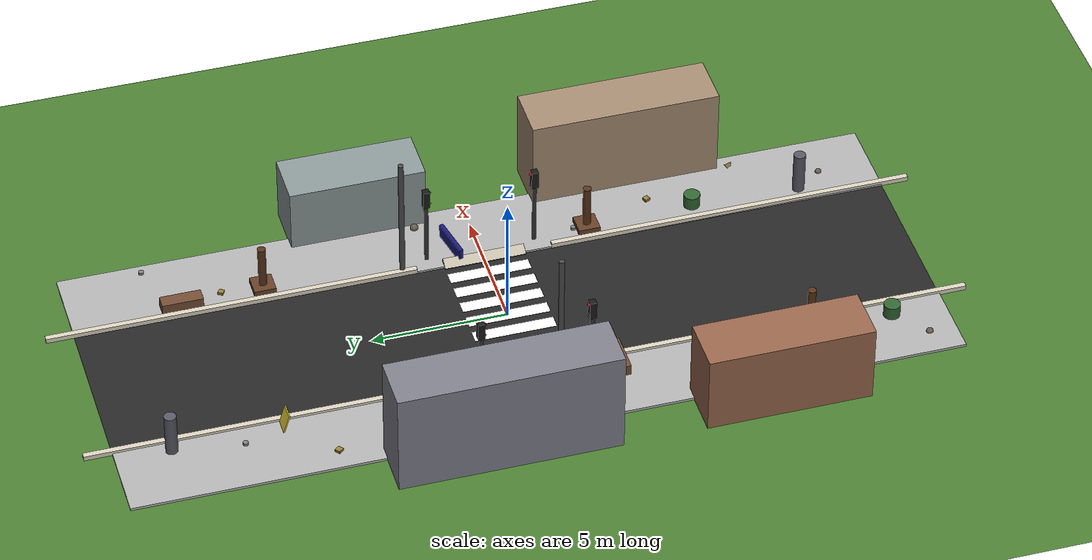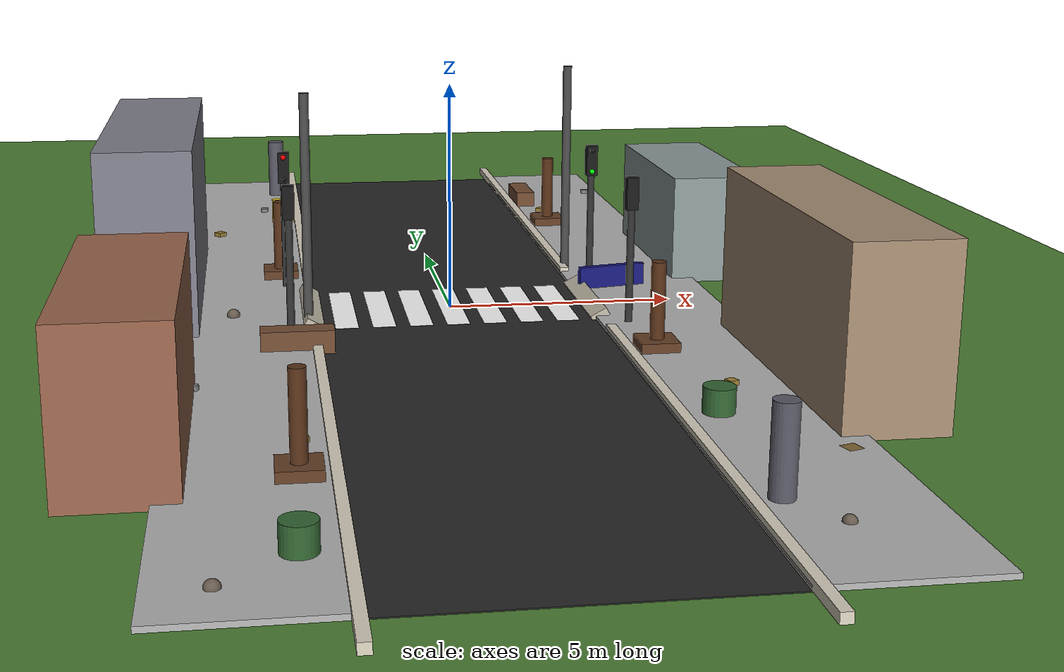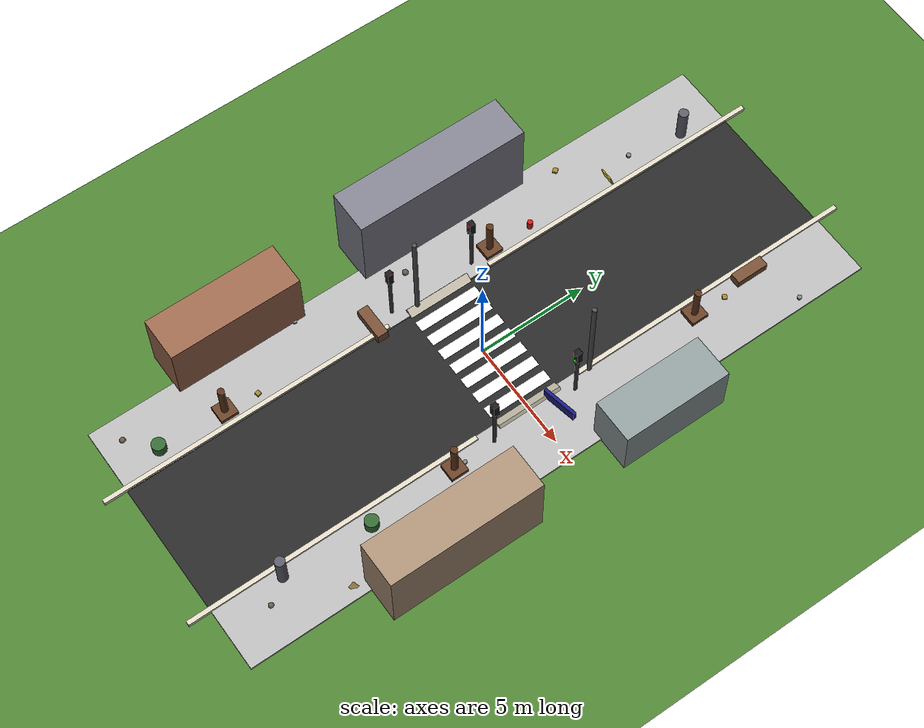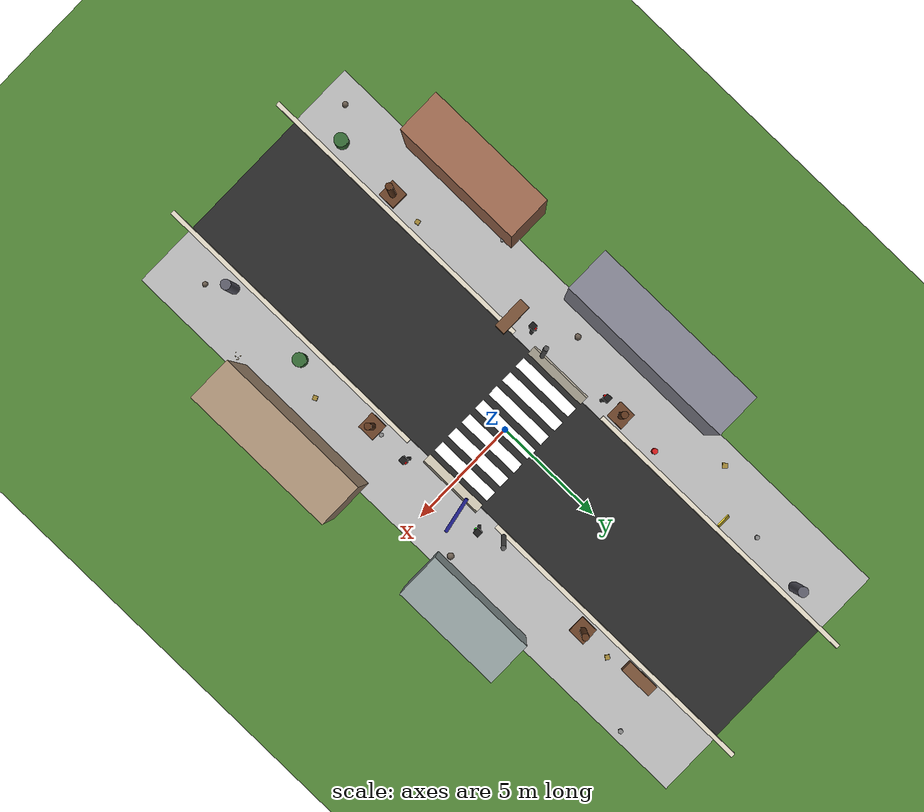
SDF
<?xml version="1.0" ?>
<sdf version="1.9">
  <world name="realistic_city">
    <physics name="1ms" type="ignore">
      <max_step_size>0.001</max_step_size>
      <real_time_factor>1.0</real_time_factor>
    </physics>
    <plugin filename="gz-sim-physics-system" name="gz::sim::systems::Physics"/>
    <plugin filename="gz-sim-scene-broadcaster-system" name="gz::sim::systems::SceneBroadcaster"/>
    <plugin filename="gz-sim-sensors-system" name="gz::sim::systems::Sensors">
      <render_engine>ogre2</render_engine>
    </plugin>
    <plugin filename="gz-sim-user-commands-system" name="gz::sim::systems::UserCommands"/>

    <light type="directional" name="sun">
      <cast_shadows>true</cast_shadows>
      <pose>0 0 10 0 0 0</pose>
      <diffuse>0.8 0.8 0.8 1</diffuse>
      <specular>0.2 0.2 0.2 1</specular>
      <attenuation><range>1000</range><constant>0.9</constant><linear>0.01</linear><quadratic>0.001</quadratic></attenuation>
      <direction>-0.5 0.1 -0.9</direction>
    </light>

    <model name="ground_plane">
      <static>true</static>
      <link name="link">
        <collision name="collision"><geometry><plane><normal>0 0 1</normal><size>100 100</size></plane></geometry></collision>
        <visual name="visual"><geometry><plane><normal>0 0 1</normal><size>100 100</size></plane></geometry>
          <material><ambient>0.3 0.5 0.2 1</ambient><diffuse>0.3 0.5 0.2 1</diffuse></material></visual>
      </link>
    </model>

    <model name="road">
      <static>true</static>
      <pose>0 0 0.01 0 0 0</pose>
      <link name="link">
        <collision name="collision"><geometry><box><size>6 30 0.02</size></box></geometry></collision>
        <visual name="visual"><geometry><box><size>6 30 0.02</size></box></geometry>
          <material><ambient>0.15 0.15 0.15 1</ambient><diffuse>0.15 0.15 0.15 1</diffuse></material></visual>
      </link>
    </model>

    <model name="sidewalk_left">
      <static>true</static>
      <pose>-4.5 0 0.05 0 0 0</pose>
      <link name="link">
        <collision name="collision"><geometry><box><size>3 30 0.1</size></box></geometry></collision>
        <visual name="visual"><geometry><box><size>3 30 0.1</size></box></geometry>
          <material><ambient>0.7 0.7 0.7 1</ambient><diffuse>0.7 0.7 0.7 1</diffuse></material></visual>
      </link>
    </model>

    <model name="sidewalk_right">
      <static>true</static>
      <pose>4.5 0 0.05 0 0 0</pose>
      <link name="link">
        <collision name="collision"><geometry><box><size>3 30 0.1</size></box></geometry></collision>
        <visual name="visual"><geometry><box><size>3 30 0.1</size></box></geometry>
          <material><ambient>0.7 0.7 0.7 1</ambient><diffuse>0.7 0.7 0.7 1</diffuse></material></visual>
      </link>
    </model>

    <model name="crosswalk_1"><static>true</static><pose>-2.4 0 0.02 0 0 0</pose>
      <link name="link"><visual name="visual"><geometry><box><size>0.5 3 0.01</size></box></geometry>
        <material><ambient>1 1 1 1</ambient><diffuse>1 1 1 1</diffuse></material></visual></link></model>
    <model name="crosswalk_2"><static>true</static><pose>-1.6 0 0.02 0 0 0</pose>
      <link name="link"><visual name="visual"><geometry><box><size>0.5 3 0.01</size></box></geometry>
        <material><ambient>1 1 1 1</ambient><diffuse>1 1 1 1</diffuse></material></visual></link></model>
    <model name="crosswalk_3"><static>true</static><pose>-0.8 0 0.02 0 0 0</pose>
      <link name="link"><visual name="visual"><geometry><box><size>0.5 3 0.01</size></box></geometry>
        <material><ambient>1 1 1 1</ambient><diffuse>1 1 1 1</diffuse></material></visual></link></model>
    <model name="crosswalk_4"><static>true</static><pose>0 0 0.02 0 0 0</pose>
      <link name="link"><visual name="visual"><geometry><box><size>0.5 3 0.01</size></box></geometry>
        <material><ambient>1 1 1 1</ambient><diffuse>1 1 1 1</diffuse></material></visual></link></model>
    <model name="crosswalk_5"><static>true</static><pose>0.8 0 0.02 0 0 0</pose>
      <link name="link"><visual name="visual"><geometry><box><size>0.5 3 0.01</size></box></geometry>
        <material><ambient>1 1 1 1</ambient><diffuse>1 1 1 1</diffuse></material></visual></link></model>
    <model name="crosswalk_6"><static>true</static><pose>1.6 0 0.02 0 0 0</pose>
      <link name="link"><visual name="visual"><geometry><box><size>0.5 3 0.01</size></box></geometry>
        <material><ambient>1 1 1 1</ambient><diffuse>1 1 1 1</diffuse></material></visual></link></model>
    <model name="crosswalk_7"><static>true</static><pose>2.4 0 0.02 0 0 0</pose>
      <link name="link"><visual name="visual"><geometry><box><size>0.5 3 0.01</size></box></geometry>
        <material><ambient>1 1 1 1</ambient><diffuse>1 1 1 1</diffuse></material></visual></link></model>

    <!-- 연석: 횡단보도(y -1.5~1.5) 구간만 끊어서 배치 -->
    <model name="curb_left_south">
      <static>true</static><pose>-3.1 -9.25 0.11 0 0 0</pose>
      <link name="link">
        <collision name="collision"><geometry><box><size>0.2 13.5 0.18</size></box></geometry></collision>
        <visual name="visual"><geometry><box><size>0.2 13.5 0.18</size></box></geometry>
          <material><ambient>0.85 0.82 0.75 1</ambient><diffuse>0.85 0.82 0.75 1</diffuse></material></visual>
      </link>
    </model>
    <model name="curb_left_north">
      <static>true</static><pose>-3.1 9.25 0.11 0 0 0</pose>
      <link name="link">
        <collision name="collision"><geometry><box><size>0.2 13.5 0.18</size></box></geometry></collision>
        <visual name="visual"><geometry><box><size>0.2 13.5 0.18</size></box></geometry>
          <material><ambient>0.85 0.82 0.75 1</ambient><diffuse>0.85 0.82 0.75 1</diffuse></material></visual>
      </link>
    </model>
    <model name="curb_right_south">
      <static>true</static><pose>3.1 -9.25 0.11 0 0 0</pose>
      <link name="link">
        <collision name="collision"><geometry><box><size>0.2 13.5 0.18</size></box></geometry></collision>
        <visual name="visual"><geometry><box><size>0.2 13.5 0.18</size></box></geometry>
          <material><ambient>0.85 0.82 0.75 1</ambient><diffuse>0.85 0.82 0.75 1</diffuse></material></visual>
      </link>
    </model>
    <model name="curb_right_north">
      <static>true</static><pose>3.1 9.25 0.11 0 0 0</pose>
      <link name="link">
        <collision name="collision"><geometry><box><size>0.2 13.5 0.18</size></box></geometry></collision>
        <visual name="visual"><geometry><box><size>0.2 13.5 0.18</size></box></geometry>
          <material><ambient>0.85 0.82 0.75 1</ambient><diffuse>0.85 0.82 0.75 1</diffuse></material></visual>
      </link>
    </model>

    <!-- 경사로: 연석 끊긴 자리(횡단보도)에만 배치 -->
    <model name="curb_ramp_left">
      <static>true</static><pose>-3.1 0 0.1 0 0.5 0</pose>
      <link name="link">
        <collision name="collision"><geometry><box><size>0.4 3 0.18</size></box></geometry></collision>
        <visual name="visual"><geometry><box><size>0.4 3 0.18</size></box></geometry>
          <material><ambient>0.75 0.72 0.65 1</ambient><diffuse>0.75 0.72 0.65 1</diffuse></material></visual>
      </link>
    </model>
    <model name="curb_ramp_right">
      <static>true</static><pose>3.1 0 0.1 0 -0.5 0</pose>
      <link name="link">
        <collision name="collision"><geometry><box><size>0.4 3 0.18</size></box></geometry></collision>
        <visual name="visual"><geometry><box><size>0.4 3 0.18</size></box></geometry>
          <material><ambient>0.75 0.72 0.65 1</ambient><diffuse>0.75 0.72 0.65 1</diffuse></material></visual>
      </link>
    </model>

    <model name="building_left_1"><static>true</static><pose>-6.5 -8 1.5 0 0 0</pose>
      <link name="link"><collision name="collision"><geometry><box><size>2 6 3</size></box></geometry></collision>
        <visual name="visual"><geometry><box><size>2 6 3</size></box></geometry>
          <material><ambient>0.6 0.4 0.3 1</ambient><diffuse>0.6 0.4 0.3 1</diffuse></material></visual></link></model>
    <model name="building_left_2"><static>true</static><pose>-6.5 2 2 0 0 0</pose>
      <link name="link"><collision name="collision"><geometry><box><size>2 8 4</size></box></geometry></collision>
        <visual name="visual"><geometry><box><size>2 8 4</size></box></geometry>
          <material><ambient>0.5 0.5 0.55 1</ambient><diffuse>0.5 0.5 0.55 1</diffuse></material></visual></link></model>
    <model name="building_right_1"><static>true</static><pose>6.5 -6 1.75 0 0 0</pose>
      <link name="link"><collision name="collision"><geometry><box><size>2 7 3.5</size></box></geometry></collision>
        <visual name="visual"><geometry><box><size>2 7 3.5</size></box></geometry>
          <material><ambient>0.65 0.55 0.45 1</ambient><diffuse>0.65 0.55 0.45 1</diffuse></material></visual></link></model>
    <model name="building_right_2"><static>true</static><pose>6.5 4 1.25 0 0 0</pose>
      <link name="link"><collision name="collision"><geometry><box><size>2 5 2.5</size></box></geometry></collision>
        <visual name="visual"><geometry><box><size>2 5 2.5</size></box></geometry>
          <material><ambient>0.55 0.6 0.6 1</ambient><diffuse>0.55 0.6 0.6 1</diffuse></material></visual></link></model>

    <model name="tree_1"><static>true</static><pose>-3.7 -10 0.15 0 0 0</pose>
      <link name="link"><collision name="collision"><geometry><box><size>0.8 0.8 0.3</size></box></geometry></collision>
        <visual name="visual"><geometry><box><size>0.8 0.8 0.3</size></box></geometry>
          <material><ambient>0.4 0.25 0.15 1</ambient><diffuse>0.4 0.25 0.15 1</diffuse></material></visual></link></model>
    <model name="tree_1_trunk"><static>true</static><pose>-3.7 -10 1.1 0 0 0</pose>
      <link name="link"><collision name="collision"><geometry><cylinder><radius>0.15</radius><length>1.6</length></cylinder></geometry></collision>
        <visual name="visual"><geometry><cylinder><radius>0.15</radius><length>1.6</length></cylinder></geometry>
          <material><ambient>0.35 0.2 0.1 1</ambient><diffuse>0.35 0.2 0.1 1</diffuse></material></visual></link></model>
    <model name="tree_2"><static>true</static><pose>3.7 -4 0.15 0 0 0</pose>
      <link name="link"><collision name="collision"><geometry><box><size>0.8 0.8 0.3</size></box></geometry></collision>
        <visual name="visual"><geometry><box><size>0.8 0.8 0.3</size></box></geometry>
          <material><ambient>0.4 0.25 0.15 1</ambient><diffuse>0.4 0.25 0.15 1</diffuse></material></visual></link></model>
    <model name="tree_2_trunk"><static>true</static><pose>3.7 -4 1.1 0 0 0</pose>
      <link name="link"><collision name="collision"><geometry><cylinder><radius>0.15</radius><length>1.6</length></cylinder></geometry></collision>
        <visual name="visual"><geometry><cylinder><radius>0.15</radius><length>1.6</length></cylinder></geometry>
          <material><ambient>0.35 0.2 0.1 1</ambient><diffuse>0.35 0.2 0.1 1</diffuse></material></visual></link></model>
    <model name="tree_3"><static>true</static><pose>-3.7 3 0.15 0 0 0</pose>
      <link name="link"><collision name="collision"><geometry><box><size>0.8 0.8 0.3</size></box></geometry></collision>
        <visual name="visual"><geometry><box><size>0.8 0.8 0.3</size></box></geometry>
          <material><ambient>0.4 0.25 0.15 1</ambient><diffuse>0.4 0.25 0.15 1</diffuse></material></visual></link></model>
    <model name="tree_3_trunk"><static>true</static><pose>-3.7 3 1.1 0 0 0</pose>
      <link name="link"><collision name="collision"><geometry><cylinder><radius>0.15</radius><length>1.6</length></cylinder></geometry></collision>
        <visual name="visual"><geometry><cylinder><radius>0.15</radius><length>1.6</length></cylinder></geometry>
          <material><ambient>0.35 0.2 0.1 1</ambient><diffuse>0.35 0.2 0.1 1</diffuse></material></visual></link></model>
    <model name="tree_4"><static>true</static><pose>3.7 8 0.15 0 0 0</pose>
      <link name="link"><collision name="collision"><geometry><box><size>0.8 0.8 0.3</size></box></geometry></collision>
        <visual name="visual"><geometry><box><size>0.8 0.8 0.3</size></box></geometry>
          <material><ambient>0.4 0.25 0.15 1</ambient><diffuse>0.4 0.25 0.15 1</diffuse></material></visual></link></model>
    <model name="tree_4_trunk"><static>true</static><pose>3.7 8 1.1 0 0 0</pose>
      <link name="link"><collision name="collision"><geometry><cylinder><radius>0.15</radius><length>1.6</length></cylinder></geometry></collision>
        <visual name="visual"><geometry><cylinder><radius>0.15</radius><length>1.6</length></cylinder></geometry>
          <material><ambient>0.35 0.2 0.1 1</ambient><diffuse>0.35 0.2 0.1 1</diffuse></material></visual></link></model>

    <model name="bench_1"><static>true</static><pose>-3.5 -3 0.25 0 0 0</pose>
      <link name="link"><collision name="collision"><geometry><box><size>1.5 0.5 0.5</size></box></geometry></collision>
        <visual name="visual"><geometry><box><size>1.5 0.5 0.5</size></box></geometry>
          <material><ambient>0.45 0.3 0.2 1</ambient><diffuse>0.45 0.3 0.2 1</diffuse></material></visual></link></model>
    <model name="bench_2"><static>true</static><pose>3.5 11 0.25 0 0 1.5708</pose>
      <link name="link"><collision name="collision"><geometry><box><size>1.5 0.5 0.5</size></box></geometry></collision>
        <visual name="visual"><geometry><box><size>1.5 0.5 0.5</size></box></geometry>
          <material><ambient>0.45 0.3 0.2 1</ambient><diffuse>0.45 0.3 0.2 1</diffuse></material></visual></link></model>

    <model name="trash_bin_1"><static>true</static><pose>-3.8 -13 0.3 0 0 0</pose>
      <link name="link"><collision name="collision"><geometry><cylinder><radius>0.3</radius><length>0.6</length></cylinder></geometry></collision>
        <visual name="visual"><geometry><cylinder><radius>0.3</radius><length>0.6</length></cylinder></geometry>
          <material><ambient>0.2 0.4 0.2 1</ambient><diffuse>0.2 0.4 0.2 1</diffuse></material></visual></link></model>
    <model name="trash_bin_2"><static>true</static><pose>3.8 -8 0.3 0 0 0</pose>
      <link name="link"><collision name="collision"><geometry><cylinder><radius>0.3</radius><length>0.6</length></cylinder></geometry></collision>
        <visual name="visual"><geometry><cylinder><radius>0.3</radius><length>0.6</length></cylinder></geometry>
          <material><ambient>0.2 0.4 0.2 1</ambient><diffuse>0.2 0.4 0.2 1</diffuse></material></visual></link></model>

    <model name="hydrant_1"><static>true</static><pose>-3.6 5 0.25 0 0 0</pose>
      <link name="link"><collision name="collision"><geometry><cylinder><radius>0.12</radius><length>0.5</length></cylinder></geometry></collision>
        <visual name="visual"><geometry><cylinder><radius>0.12</radius><length>0.5</length></cylinder></geometry>
          <material><ambient>0.8 0.1 0.1 1</ambient><diffuse>0.8 0.1 0.1 1</diffuse></material></visual></link></model>

    <model name="parked_bike_1"><static>true</static><pose>3.9 1 0.3 0 0 0.2</pose>
      <link name="link"><collision name="collision"><geometry><box><size>1.6 0.15 0.6</size></box></geometry></collision>
        <visual name="visual"><geometry><box><size>1.6 0.15 0.6</size></box></geometry>
          <material><ambient>0.1 0.1 0.5 1</ambient><diffuse>0.1 0.1 0.5 1</diffuse></material></visual></link></model>

    <model name="sign_board_1"><static>true</static><pose>-3.5 9 0.4 0.3 0 0</pose>
      <link name="link"><collision name="collision"><geometry><box><size>0.6 0.05 0.8</size></box></geometry></collision>
        <visual name="visual"><geometry><box><size>0.6 0.05 0.8</size></box></geometry>
          <material><ambient>0.9 0.8 0.2 1</ambient><diffuse>0.9 0.8 0.2 1</diffuse></material></visual></link></model>

    <model name="pedestrian_1">
      <static>true</static><pose>3.6 -12 0.85 0 0 0</pose>
      <link name="link"><collision name="collision"><geometry><cylinder><radius>0.22</radius><length>1.7</length></cylinder></geometry></collision>
        <visual name="visual"><geometry><cylinder><radius>0.22</radius><length>1.7</length></cylinder></geometry>
          <material><ambient>0.35 0.35 0.4 1</ambient><diffuse>0.35 0.35 0.4 1</diffuse></material></visual></link>
    </model>
    <model name="pedestrian_2">
      <static>true</static><pose>-3.6 13 0.85 0 0 0</pose>
      <link name="link"><collision name="collision"><geometry><cylinder><radius>0.22</radius><length>1.7</length></cylinder></geometry></collision>
        <visual name="visual"><geometry><cylinder><radius>0.22</radius><length>1.7</length></cylinder></geometry>
          <material><ambient>0.35 0.35 0.4 1</ambient><diffuse>0.35 0.35 0.4 1</diffuse></material></visual></link>
    </model>

    <model name="pole_1"><static>true</static><pose>-3.2 -1 2.5 0 0 0</pose>
      <link name="link"><collision name="collision"><geometry><cylinder><radius>0.1</radius><length>5</length></cylinder></geometry></collision>
        <visual name="visual"><geometry><cylinder><radius>0.1</radius><length>5</length></cylinder></geometry>
          <material><ambient>0.3 0.3 0.3 1</ambient><diffuse>0.3 0.3 0.3 1</diffuse></material></visual></link></model>
    <model name="pole_2"><static>true</static><pose>3.2 3 2.5 0 0 0</pose>
      <link name="link"><collision name="collision"><geometry><cylinder><radius>0.1</radius><length>5</length></cylinder></geometry></collision>
        <visual name="visual"><geometry><cylinder><radius>0.1</radius><length>5</length></cylinder></geometry>
          <material><ambient>0.3 0.3 0.3 1</ambient><diffuse>0.3 0.3 0.3 1</diffuse></material></visual></link></model>

    <model name="extra_rock_1"><static>true</static><pose>-5 -14 0.1 0 0 0</pose>
      <link name="link"><collision name="collision"><geometry><sphere><radius>0.13</radius></sphere></geometry></collision>
        <visual name="visual"><geometry><sphere><radius>0.13</radius></sphere></geometry><material><ambient>0.4 0.35 0.3 1</ambient><diffuse>0.4 0.35 0.3 1</diffuse></material></visual></link></model>
    <model name="extra_debris_1"><static>true</static><pose>-4.2 -11.5 0.06 0 0 0.5</pose>
      <link name="link"><collision name="collision"><geometry><box><size>0.28 0.28 0.07</size></box></geometry></collision>
        <visual name="visual"><geometry><box><size>0.28 0.28 0.07</size></box></geometry><material><ambient>0.5 0.4 0.2 1</ambient><diffuse>0.5 0.4 0.2 1</diffuse></material></visual></link></model>
    <model name="extra_box_1"><static>true</static><pose>-3.6 -8.5 0.1 0 0 0.2</pose>
      <link name="link"><collision name="collision"><geometry><box><size>0.2 0.2 0.2</size></box></geometry></collision>
        <visual name="visual"><geometry><box><size>0.2 0.2 0.2</size></box></geometry><material><ambient>0.6 0.5 0.2 1</ambient><diffuse>0.6 0.5 0.2 1</diffuse></material></visual></link></model>
    <model name="extra_cylinder_1"><static>true</static><pose>-5.5 -5.5 0.1 0 0 0</pose>
      <link name="link"><collision name="collision"><geometry><cylinder><radius>0.09</radius><length>0.2</length></cylinder></geometry></collision>
        <visual name="visual"><geometry><cylinder><radius>0.09</radius><length>0.2</length></cylinder></geometry><material><ambient>0.5 0.5 0.5 1</ambient><diffuse>0.5 0.5 0.5 1</diffuse></material></visual></link></model>
    <model name="extra_rock_2"><static>true</static><pose>-4.8 -0.5 0.12 0 0 0</pose>
      <link name="link"><collision name="collision"><geometry><sphere><radius>0.14</radius></sphere></geometry></collision>
        <visual name="visual"><geometry><sphere><radius>0.14</radius></sphere></geometry><material><ambient>0.4 0.35 0.3 1</ambient><diffuse>0.4 0.35 0.3 1</diffuse></material></visual></link></model>
    <model name="extra_debris_2"><static>true</static><pose>-3.5 4.5 0.06 0 0 0.9</pose>
      <link name="link"><collision name="collision"><geometry><box><size>0.25 0.25 0.06</size></box></geometry></collision>
        <visual name="visual"><geometry><box><size>0.25 0.25 0.06</size></box></geometry><material><ambient>0.5 0.4 0.2 1</ambient><diffuse>0.5 0.4 0.2 1</diffuse></material></visual></link></model>
    <model name="extra_box_2"><static>true</static><pose>-5.2 7.5 0.1 0 0 0.7</pose>
      <link name="link"><collision name="collision"><geometry><box><size>0.22 0.22 0.2</size></box></geometry></collision>
        <visual name="visual"><geometry><box><size>0.22 0.22 0.2</size></box></geometry><material><ambient>0.6 0.5 0.2 1</ambient><diffuse>0.6 0.5 0.2 1</diffuse></material></visual></link></model>
    <model name="extra_cylinder_2"><static>true</static><pose>-4 10.5 0.1 0 0 0</pose>
      <link name="link"><collision name="collision"><geometry><cylinder><radius>0.1</radius><length>0.2</length></cylinder></geometry></collision>
        <visual name="visual"><geometry><cylinder><radius>0.1</radius><length>0.2</length></cylinder></geometry><material><ambient>0.5 0.5 0.5 1</ambient><diffuse>0.5 0.5 0.5 1</diffuse></material></visual></link></model>
    <model name="extra_rock_3"><static>true</static><pose>4.3 -13 0.1 0 0 0</pose>
      <link name="link"><collision name="collision"><geometry><sphere><radius>0.12</radius></sphere></geometry></collision>
        <visual name="visual"><geometry><sphere><radius>0.12</radius></sphere></geometry><material><ambient>0.4 0.35 0.3 1</ambient><diffuse>0.4 0.35 0.3 1</diffuse></material></visual></link></model>
    <model name="extra_debris_3"><static>true</static><pose>5.5 -10 0.06 0 0 0.3</pose>
      <link name="link"><collision name="collision"><geometry><box><size>0.3 0.3 0.08</size></box></geometry></collision>
        <visual name="visual"><geometry><box><size>0.3 0.3 0.08</size></box></geometry><material><ambient>0.5 0.4 0.2 1</ambient><diffuse>0.5 0.4 0.2 1</diffuse></material></visual></link></model>
    <model name="extra_box_3"><static>true</static><pose>4.5 -6.5 0.1 0 0 0.4</pose>
      <link name="link"><collision name="collision"><geometry><box><size>0.2 0.2 0.2</size></box></geometry></collision>
        <visual name="visual"><geometry><box><size>0.2 0.2 0.2</size></box></geometry><material><ambient>0.6 0.5 0.2 1</ambient><diffuse>0.6 0.5 0.2 1</diffuse></material></visual></link></model>
    <model name="extra_cylinder_3"><static>true</static><pose>3.7 -3.5 0.1 0 0 0</pose>
      <link name="link"><collision name="collision"><geometry><cylinder><radius>0.09</radius><length>0.2</length></cylinder></geometry></collision>
        <visual name="visual"><geometry><cylinder><radius>0.09</radius><length>0.2</length></cylinder></geometry><material><ambient>0.5 0.5 0.5 1</ambient><diffuse>0.5 0.5 0.5 1</diffuse></material></visual></link></model>
    <model name="extra_rock_4"><static>true</static><pose>5.3 2 0.13 0 0 0</pose>
      <link name="link"><collision name="collision"><geometry><sphere><radius>0.15</radius></sphere></geometry></collision>
        <visual name="visual"><geometry><sphere><radius>0.15</radius></sphere></geometry><material><ambient>0.4 0.35 0.3 1</ambient><diffuse>0.4 0.35 0.3 1</diffuse></material></visual></link></model>
    <model name="extra_debris_4"><static>true</static><pose>4.6 5.5 0.06 0 0 0.6</pose>
      <link name="link"><collision name="collision"><geometry><box><size>0.26 0.26 0.07</size></box></geometry></collision>
        <visual name="visual"><geometry><box><size>0.26 0.26 0.07</size></box></geometry><material><ambient>0.5 0.4 0.2 1</ambient><diffuse>0.5 0.4 0.2 1</diffuse></material></visual></link></model>
    <model name="extra_box_4"><static>true</static><pose>3.8 9.5 0.1 0 0 1.0</pose>
      <link name="link"><collision name="collision"><geometry><box><size>0.2 0.2 0.2</size></box></geometry></collision>
        <visual name="visual"><geometry><box><size>0.2 0.2 0.2</size></box></geometry><material><ambient>0.6 0.5 0.2 1</ambient><diffuse>0.6 0.5 0.2 1</diffuse></material></visual></link></model>
    <model name="extra_cylinder_4"><static>true</static><pose>5.6 12 0.1 0 0 0</pose>
      <link name="link"><collision name="collision"><geometry><cylinder><radius>0.1</radius><length>0.2</length></cylinder></geometry></collision>
        <visual name="visual"><geometry><cylinder><radius>0.1</radius><length>0.2</length></cylinder></geometry><material><ambient>0.5 0.5 0.5 1</ambient><diffuse>0.5 0.5 0.5 1</diffuse></material></visual></link></model>

    <!-- 신호등 (횡단보도 네 모서리) -->
    <model name="traffic_light_1">
      <static>true</static><pose>-3.6 -2 1.5 0 0 0</pose>
      <link name="link">
        <collision name="collision"><geometry><cylinder><radius>0.08</radius><length>3</length></cylinder></geometry></collision>
        <visual name="visual"><geometry><cylinder><radius>0.08</radius><length>3</length></cylinder></geometry>
          <material><ambient>0.2 0.2 0.2 1</ambient><diffuse>0.2 0.2 0.2 1</diffuse></material></visual>
      </link>
    </model>
    <model name="traffic_light_1_head">
      <static>true</static><pose>-3.6 -2 2.9 0 0 0</pose>
      <link name="link">
        <visual name="visual"><geometry><box><size>0.25 0.25 0.7</size></box></geometry>
          <material><ambient>0.1 0.1 0.1 1</ambient><diffuse>0.1 0.1 0.1 1</diffuse></material></visual>
      </link>
    </model>
    <model name="traffic_light_1_red">
      <static>true</static><pose>-3.6 -1.87 3.15 0 0 0</pose>
      <link name="link">
        <visual name="visual"><geometry><sphere><radius>0.06</radius></sphere></geometry>
          <material><ambient>1 0 0 1</ambient><diffuse>1 0 0 1</diffuse><emissive>0.6 0 0 1</emissive></material></visual>
      </link>
    </model>
    <model name="traffic_light_1_green">
      <static>true</static><pose>-3.6 -1.87 2.65 0 0 0</pose>
      <link name="link">
        <visual name="visual"><geometry><sphere><radius>0.06</radius></sphere></geometry>
          <material><ambient>0.1 0.1 0.1 1</ambient><diffuse>0.1 0.1 0.1 1</diffuse></material></visual>
      </link>
    </model>

    <model name="traffic_light_2">
      <static>true</static><pose>3.6 2 1.5 0 0 0</pose>
      <link name="link">
        <collision name="collision"><geometry><cylinder><radius>0.08</radius><length>3</length></cylinder></geometry></collision>
        <visual name="visual"><geometry><cylinder><radius>0.08</radius><length>3</length></cylinder></geometry>
          <material><ambient>0.2 0.2 0.2 1</ambient><diffuse>0.2 0.2 0.2 1</diffuse></material></visual>
      </link>
    </model>
    <model name="traffic_light_2_head">
      <static>true</static><pose>3.6 2 2.9 0 0 0</pose>
      <link name="link">
        <visual name="visual"><geometry><box><size>0.25 0.25 0.7</size></box></geometry>
          <material><ambient>0.1 0.1 0.1 1</ambient><diffuse>0.1 0.1 0.1 1</diffuse></material></visual>
      </link>
    </model>
    <model name="traffic_light_2_red">
      <static>true</static><pose>3.6 1.87 3.15 0 0 0</pose>
      <link name="link">
        <visual name="visual"><geometry><sphere><radius>0.06</radius></sphere></geometry>
          <material><ambient>0.1 0.1 0.1 1</ambient><diffuse>0.1 0.1 0.1 1</diffuse></material></visual>
      </link>
    </model>
    <model name="traffic_light_2_green">
      <static>true</static><pose>3.6 1.87 2.65 0 0 0</pose>
      <link name="link">
        <visual name="visual"><geometry><sphere><radius>0.06</radius></sphere></geometry>
          <material><ambient>0 1 0 1</ambient><diffuse>0 1 0 1</diffuse><emissive>0 0.6 0 1</emissive></material></visual>
      </link>
    </model>

    <model name="traffic_light_3">
      <static>true</static><pose>-3.6 2 1.5 0 0 0</pose>
      <link name="link">
        <collision name="collision"><geometry><cylinder><radius>0.08</radius><length>3</length></cylinder></geometry></collision>
        <visual name="visual"><geometry><cylinder><radius>0.08</radius><length>3</length></cylinder></geometry>
          <material><ambient>0.2 0.2 0.2 1</ambient><diffuse>0.2 0.2 0.2 1</diffuse></material></visual>
      </link>
    </model>
    <model name="traffic_light_3_head">
      <static>true</static><pose>-3.6 2 2.9 0 0 0</pose>
      <link name="link">
        <visual name="visual"><geometry><box><size>0.25 0.25 0.7</size></box></geometry>
          <material><ambient>0.1 0.1 0.1 1</ambient><diffuse>0.1 0.1 0.1 1</diffuse></material></visual>
      </link>
    </model>
    <model name="traffic_light_3_red">
      <static>true</static><pose>-3.6 1.87 3.15 0 0 0</pose>
      <link name="link">
        <visual name="visual"><geometry><sphere><radius>0.06</radius></sphere></geometry>
          <material><ambient>1 0 0 1</ambient><diffuse>1 0 0 1</diffuse><emissive>0.6 0 0 1</emissive></material></visual>
      </link>
    </model>
    <model name="traffic_light_3_green">
      <static>true</static><pose>-3.6 1.87 2.65 0 0 0</pose>
      <link name="link">
        <visual name="visual"><geometry><sphere><radius>0.06</radius></sphere></geometry>
          <material><ambient>0.1 0.1 0.1 1</ambient><diffuse>0.1 0.1 0.1 1</diffuse></material></visual>
      </link>
    </model>

    <model name="traffic_light_4">
      <static>true</static><pose>3.6 -2 1.5 0 0 0</pose>
      <link name="link">
        <collision name="collision"><geometry><cylinder><radius>0.08</radius><length>3</length></cylinder></geometry></collision>
        <visual name="visual"><geometry><cylinder><radius>0.08</radius><length>3</length></cylinder></geometry>
          <material><ambient>0.2 0.2 0.2 1</ambient><diffuse>0.2 0.2 0.2 1</diffuse></material></visual>
      </link>
    </model>
    <model name="traffic_light_4_head">
      <static>true</static><pose>3.6 -2 2.9 0 0 0</pose>
      <link name="link">
        <visual name="visual"><geometry><box><size>0.25 0.25 0.7</size></box></geometry>
          <material><ambient>0.1 0.1 0.1 1</ambient><diffuse>0.1 0.1 0.1 1</diffuse></material></visual>
      </link>
    </model>
    <model name="traffic_light_4_red">
      <static>true</static><pose>3.6 -1.87 3.15 0 0 0</pose>
      <link name="link">
        <visual name="visual"><geometry><sphere><radius>0.06</radius></sphere></geometry>
          <material><ambient>1 0 0 1</ambient><diffuse>1 0 0 1</diffuse><emissive>0.6 0 0 1</emissive></material></visual>
      </link>
    </model>
    <model name="traffic_light_4_green">
      <static>true</static><pose>3.6 -1.87 2.65 0 0 0</pose>
      <link name="link">
        <visual name="visual"><geometry><sphere><radius>0.06</radius></sphere></geometry>
          <material><ambient>0.1 0.1 0.1 1</ambient><diffuse>0.1 0.1 0.1 1</diffuse></material></visual>
      </link>
    </model>

  </world>
</sdf>
